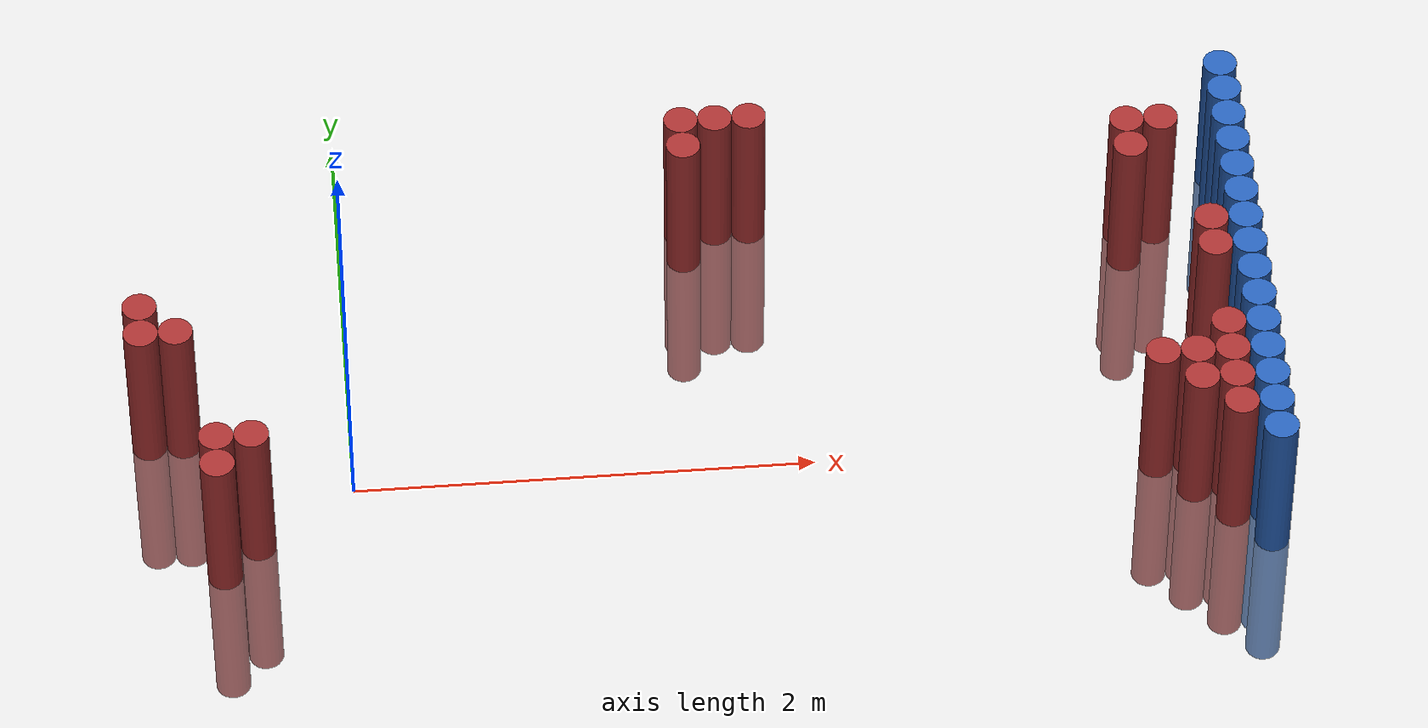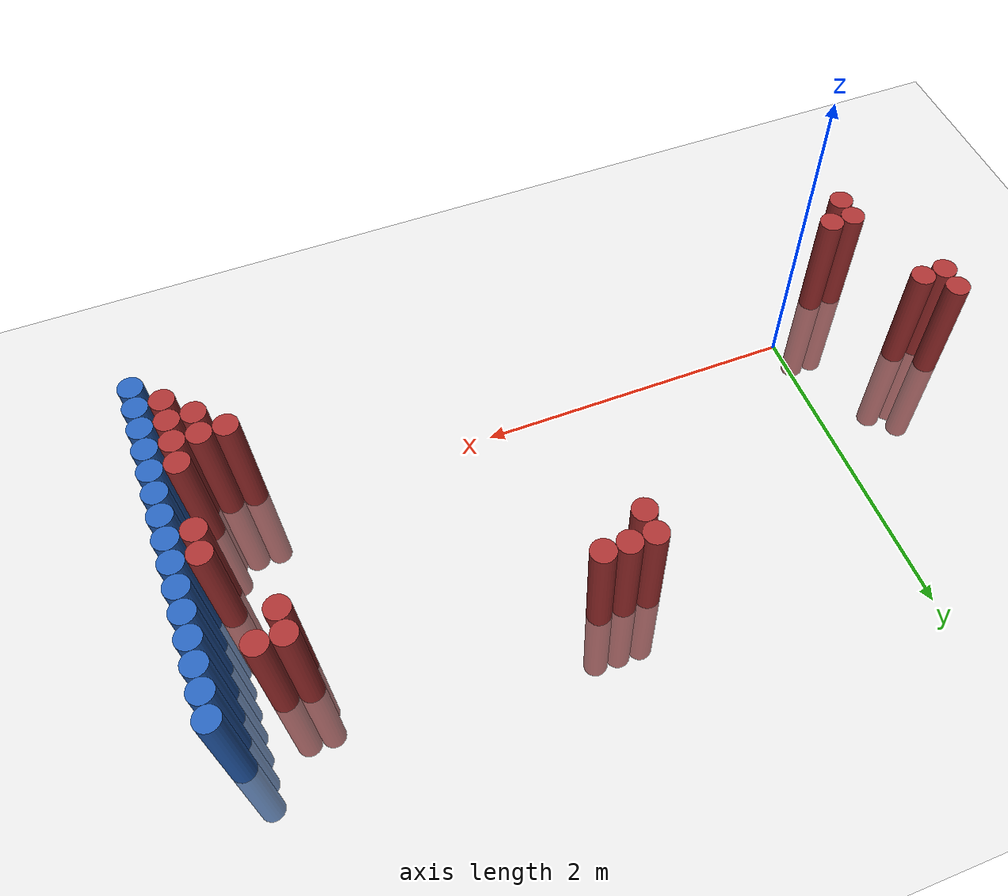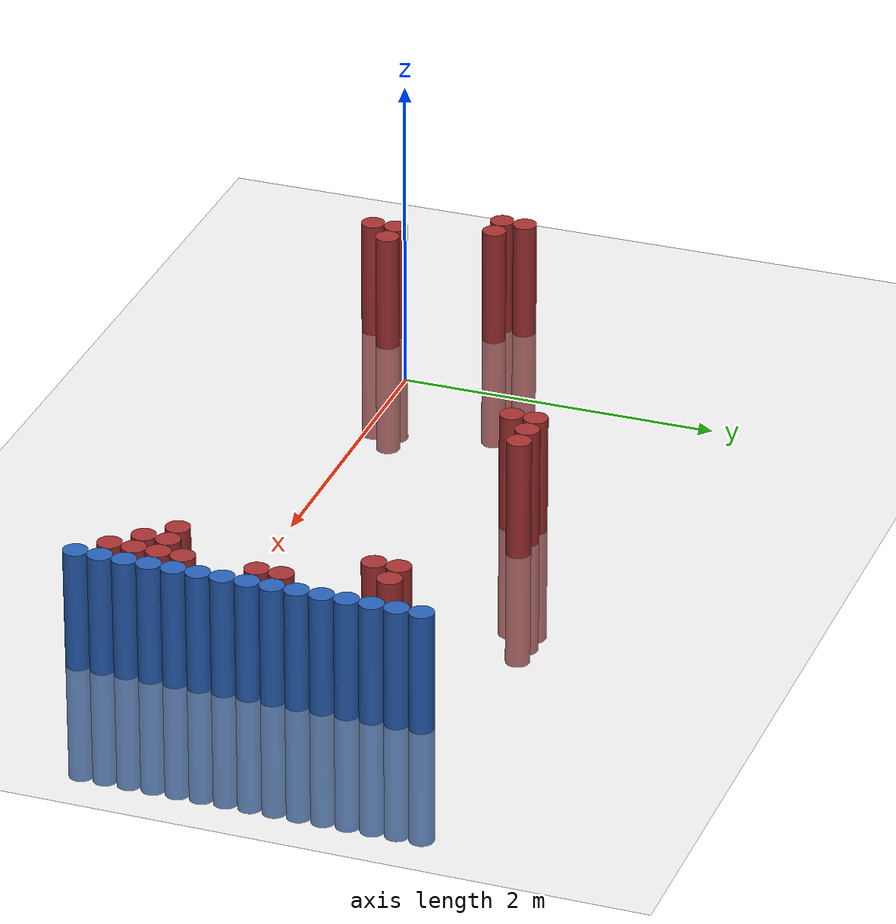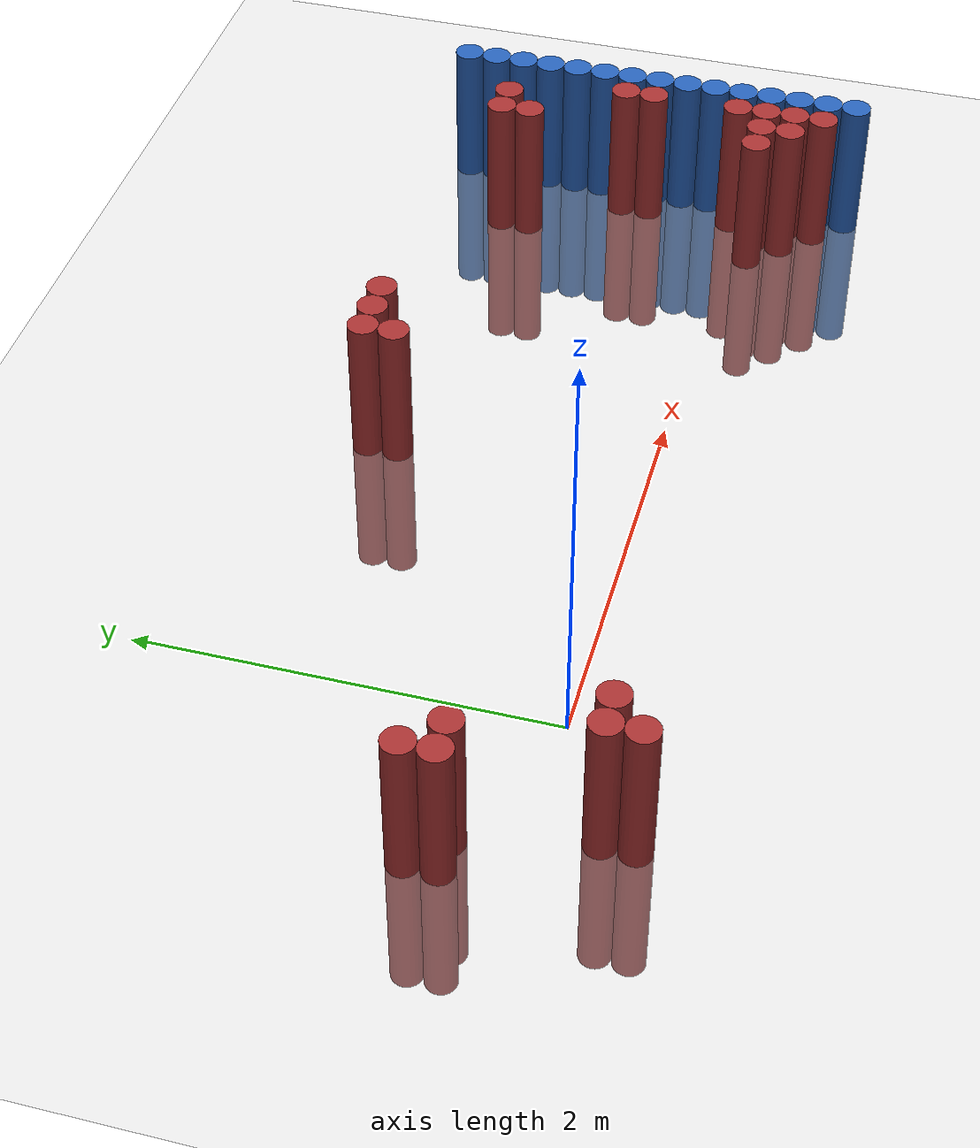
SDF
<sdf version="1.6">
 <world name="default">
  <model name="ground_plane">
   <static>1</static>
   <link name="link">
    <collision name="collision">
     <geometry><plane><normal>0 0 1</normal><size>100 100</size></plane></geometry>
     <surface><friction><ode><mu>100</mu><mu2>50</mu2></ode></friction></surface>
    </collision>
    <visual name="visual">
     <cast_shadows>0</cast_shadows>
     <geometry><plane><normal>0 0 1</normal><size>100 100</size></plane></geometry>
     <material>
      <script><uri>file://media/materials/scripts/gazebo.material</uri><name>Gazebo/Grey</name></script>
     </material>
    </visual>
   </link>
  </model>
  <model name="unit_cylinder_108">
   <static>1</static>
   <pose>3.925000 -0.425000 0.000000 0.000000 0.000000 0.000000</pose>
   <link name="link">
    <inertial>
     <mass>1</mass>
     <inertia><ixx>0.145833</ixx><ixy>0</ixy><ixz>0</ixz><iyy>0.145833</iyy><iyz>0</iyz><izz>0.125</izz></inertia>
    </inertial>
    <collision name="collision">
     <geometry><cylinder><radius>0.075000</radius><length>1.5</length></cylinder></geometry>
    </collision>
    <visual name="visual">
     <geometry><cylinder><radius>0.075000</radius><length>1.5</length></cylinder></geometry>
     <material>
      <ambient>0.152000 0.379000 0.720000 1</ambient>
      <diffuse>0.152000 0.379000 0.720000 1</diffuse>
     </material>
     <material>
      <script><name>Gazebo/Grey</name><uri>file://media/materials/scripts/gazebo.material</uri></script>
     </material>
    </visual>
   </link>
  </model>
  <model name="unit_cylinder_110">
   <static>1</static>
   <pose>3.925000 -0.275000 0.000000 0.000000 0.000000 0.000000</pose>
   <link name="link">
    <inertial>
     <mass>1</mass>
     <inertia><ixx>0.145833</ixx><ixy>0</ixy><ixz>0</ixz><iyy>0.145833</iyy><iyz>0</iyz><izz>0.125</izz></inertia>
    </inertial>
    <collision name="collision">
     <geometry><cylinder><radius>0.075000</radius><length>1.5</length></cylinder></geometry>
    </collision>
    <visual name="visual">
     <geometry><cylinder><radius>0.075000</radius><length>1.5</length></cylinder></geometry>
     <material>
      <ambient>0.152000 0.379000 0.720000 1</ambient>
      <diffuse>0.152000 0.379000 0.720000 1</diffuse>
     </material>
     <material>
      <script><name>Gazebo/Grey</name><uri>file://media/materials/scripts/gazebo.material</uri></script>
     </material>
    </visual>
   </link>
  </model>
  <model name="unit_cylinder_112">
   <static>1</static>
   <pose>3.925000 -0.125000 0.000000 0.000000 0.000000 0.000000</pose>
   <link name="link">
    <inertial>
     <mass>1</mass>
     <inertia><ixx>0.145833</ixx><ixy>0</ixy><ixz>0</ixz><iyy>0.145833</iyy><iyz>0</iyz><izz>0.125</izz></inertia>
    </inertial>
    <collision name="collision">
     <geometry><cylinder><radius>0.075000</radius><length>1.5</length></cylinder></geometry>
    </collision>
    <visual name="visual">
     <geometry><cylinder><radius>0.075000</radius><length>1.5</length></cylinder></geometry>
     <material>
      <ambient>0.152000 0.379000 0.720000 1</ambient>
      <diffuse>0.152000 0.379000 0.720000 1</diffuse>
     </material>
     <material>
      <script><name>Gazebo/Grey</name><uri>file://media/materials/scripts/gazebo.material</uri></script>
     </material>
    </visual>
   </link>
  </model>
  <model name="unit_cylinder_114">
   <static>1</static>
   <pose>3.925000 0.025000 0.000000 0.000000 0.000000 0.000000</pose>
   <link name="link">
    <inertial>
     <mass>1</mass>
     <inertia><ixx>0.145833</ixx><ixy>0</ixy><ixz>0</ixz><iyy>0.145833</iyy><iyz>0</iyz><izz>0.125</izz></inertia>
    </inertial>
    <collision name="collision">
     <geometry><cylinder><radius>0.075000</radius><length>1.5</length></cylinder></geometry>
    </collision>
    <visual name="visual">
     <geometry><cylinder><radius>0.075000</radius><length>1.5</length></cylinder></geometry>
     <material>
      <ambient>0.152000 0.379000 0.720000 1</ambient>
      <diffuse>0.152000 0.379000 0.720000 1</diffuse>
     </material>
     <material>
      <script><name>Gazebo/Grey</name><uri>file://media/materials/scripts/gazebo.material</uri></script>
     </material>
    </visual>
   </link>
  </model>
  <model name="unit_cylinder_116">
   <static>1</static>
   <pose>3.925000 0.175000 0.000000 0.000000 0.000000 0.000000</pose>
   <link name="link">
    <inertial>
     <mass>1</mass>
     <inertia><ixx>0.145833</ixx><ixy>0</ixy><ixz>0</ixz><iyy>0.145833</iyy><iyz>0</iyz><izz>0.125</izz></inertia>
    </inertial>
    <collision name="collision">
     <geometry><cylinder><radius>0.075000</radius><length>1.5</length></cylinder></geometry>
    </collision>
    <visual name="visual">
     <geometry><cylinder><radius>0.075000</radius><length>1.5</length></cylinder></geometry>
     <material>
      <ambient>0.152000 0.379000 0.720000 1</ambient>
      <diffuse>0.152000 0.379000 0.720000 1</diffuse>
     </material>
     <material>
      <script><name>Gazebo/Grey</name><uri>file://media/materials/scripts/gazebo.material</uri></script>
     </material>
    </visual>
   </link>
  </model>
  <model name="unit_cylinder_118">
   <static>1</static>
   <pose>3.925000 0.325000 0.000000 0.000000 0.000000 0.000000</pose>
   <link name="link">
    <inertial>
     <mass>1</mass>
     <inertia><ixx>0.145833</ixx><ixy>0</ixy><ixz>0</ixz><iyy>0.145833</iyy><iyz>0</iyz><izz>0.125</izz></inertia>
    </inertial>
    <collision name="collision">
     <geometry><cylinder><radius>0.075000</radius><length>1.5</length></cylinder></geometry>
    </collision>
    <visual name="visual">
     <geometry><cylinder><radius>0.075000</radius><length>1.5</length></cylinder></geometry>
     <material>
      <ambient>0.152000 0.379000 0.720000 1</ambient>
      <diffuse>0.152000 0.379000 0.720000 1</diffuse>
     </material>
     <material>
      <script><name>Gazebo/Grey</name><uri>file://media/materials/scripts/gazebo.material</uri></script>
     </material>
    </visual>
   </link>
  </model>
  <model name="unit_cylinder_120">
   <static>1</static>
   <pose>3.925000 0.475000 0.000000 0.000000 0.000000 0.000000</pose>
   <link name="link">
    <inertial>
     <mass>1</mass>
     <inertia><ixx>0.145833</ixx><ixy>0</ixy><ixz>0</ixz><iyy>0.145833</iyy><iyz>0</iyz><izz>0.125</izz></inertia>
    </inertial>
    <collision name="collision">
     <geometry><cylinder><radius>0.075000</radius><length>1.5</length></cylinder></geometry>
    </collision>
    <visual name="visual">
     <geometry><cylinder><radius>0.075000</radius><length>1.5</length></cylinder></geometry>
     <material>
      <ambient>0.152000 0.379000 0.720000 1</ambient>
      <diffuse>0.152000 0.379000 0.720000 1</diffuse>
     </material>
     <material>
      <script><name>Gazebo/Grey</name><uri>file://media/materials/scripts/gazebo.material</uri></script>
     </material>
    </visual>
   </link>
  </model>
  <model name="unit_cylinder_122">
   <static>1</static>
   <pose>3.925000 0.625000 0.000000 0.000000 0.000000 0.000000</pose>
   <link name="link">
    <inertial>
     <mass>1</mass>
     <inertia><ixx>0.145833</ixx><ixy>0</ixy><ixz>0</ixz><iyy>0.145833</iyy><iyz>0</iyz><izz>0.125</izz></inertia>
    </inertial>
    <collision name="collision">
     <geometry><cylinder><radius>0.075000</radius><length>1.5</length></cylinder></geometry>
    </collision>
    <visual name="visual">
     <geometry><cylinder><radius>0.075000</radius><length>1.5</length></cylinder></geometry>
     <material>
      <ambient>0.152000 0.379000 0.720000 1</ambient>
      <diffuse>0.152000 0.379000 0.720000 1</diffuse>
     </material>
     <material>
      <script><name>Gazebo/Grey</name><uri>file://media/materials/scripts/gazebo.material</uri></script>
     </material>
    </visual>
   </link>
  </model>
  <model name="unit_cylinder_124">
   <static>1</static>
   <pose>3.925000 0.775000 0.000000 0.000000 0.000000 0.000000</pose>
   <link name="link">
    <inertial>
     <mass>1</mass>
     <inertia><ixx>0.145833</ixx><ixy>0</ixy><ixz>0</ixz><iyy>0.145833</iyy><iyz>0</iyz><izz>0.125</izz></inertia>
    </inertial>
    <collision name="collision">
     <geometry><cylinder><radius>0.075000</radius><length>1.5</length></cylinder></geometry>
    </collision>
    <visual name="visual">
     <geometry><cylinder><radius>0.075000</radius><length>1.5</length></cylinder></geometry>
     <material>
      <ambient>0.152000 0.379000 0.720000 1</ambient>
      <diffuse>0.152000 0.379000 0.720000 1</diffuse>
     </material>
     <material>
      <script><name>Gazebo/Grey</name><uri>file://media/materials/scripts/gazebo.material</uri></script>
     </material>
    </visual>
   </link>
  </model>
  <model name="unit_cylinder_126">
   <static>1</static>
   <pose>3.925000 0.925000 0.000000 0.000000 0.000000 0.000000</pose>
   <link name="link">
    <inertial>
     <mass>1</mass>
     <inertia><ixx>0.145833</ixx><ixy>0</ixy><ixz>0</ixz><iyy>0.145833</iyy><iyz>0</iyz><izz>0.125</izz></inertia>
    </inertial>
    <collision name="collision">
     <geometry><cylinder><radius>0.075000</radius><length>1.5</length></cylinder></geometry>
    </collision>
    <visual name="visual">
     <geometry><cylinder><radius>0.075000</radius><length>1.5</length></cylinder></geometry>
     <material>
      <ambient>0.152000 0.379000 0.720000 1</ambient>
      <diffuse>0.152000 0.379000 0.720000 1</diffuse>
     </material>
     <material>
      <script><name>Gazebo/Grey</name><uri>file://media/materials/scripts/gazebo.material</uri></script>
     </material>
    </visual>
   </link>
  </model>
  <model name="unit_cylinder_128">
   <static>1</static>
   <pose>3.925000 1.075000 0.000000 0.000000 0.000000 0.000000</pose>
   <link name="link">
    <inertial>
     <mass>1</mass>
     <inertia><ixx>0.145833</ixx><ixy>0</ixy><ixz>0</ixz><iyy>0.145833</iyy><iyz>0</iyz><izz>0.125</izz></inertia>
    </inertial>
    <collision name="collision">
     <geometry><cylinder><radius>0.075000</radius><length>1.5</length></cylinder></geometry>
    </collision>
    <visual name="visual">
     <geometry><cylinder><radius>0.075000</radius><length>1.5</length></cylinder></geometry>
     <material>
      <ambient>0.152000 0.379000 0.720000 1</ambient>
      <diffuse>0.152000 0.379000 0.720000 1</diffuse>
     </material>
     <material>
      <script><name>Gazebo/Grey</name><uri>file://media/materials/scripts/gazebo.material</uri></script>
     </material>
    </visual>
   </link>
  </model>
  <model name="unit_cylinder_130">
   <static>1</static>
   <pose>3.925000 1.225000 0.000000 0.000000 0.000000 0.000000</pose>
   <link name="link">
    <inertial>
     <mass>1</mass>
     <inertia><ixx>0.145833</ixx><ixy>0</ixy><ixz>0</ixz><iyy>0.145833</iyy><iyz>0</iyz><izz>0.125</izz></inertia>
    </inertial>
    <collision name="collision">
     <geometry><cylinder><radius>0.075000</radius><length>1.5</length></cylinder></geometry>
    </collision>
    <visual name="visual">
     <geometry><cylinder><radius>0.075000</radius><length>1.5</length></cylinder></geometry>
     <material>
      <ambient>0.152000 0.379000 0.720000 1</ambient>
      <diffuse>0.152000 0.379000 0.720000 1</diffuse>
     </material>
     <material>
      <script><name>Gazebo/Grey</name><uri>file://media/materials/scripts/gazebo.material</uri></script>
     </material>
    </visual>
   </link>
  </model>
  <model name="unit_cylinder_132">
   <static>1</static>
   <pose>3.925000 1.375000 0.000000 0.000000 0.000000 0.000000</pose>
   <link name="link">
    <inertial>
     <mass>1</mass>
     <inertia><ixx>0.145833</ixx><ixy>0</ixy><ixz>0</ixz><iyy>0.145833</iyy><iyz>0</iyz><izz>0.125</izz></inertia>
    </inertial>
    <collision name="collision">
     <geometry><cylinder><radius>0.075000</radius><length>1.5</length></cylinder></geometry>
    </collision>
    <visual name="visual">
     <geometry><cylinder><radius>0.075000</radius><length>1.5</length></cylinder></geometry>
     <material>
      <ambient>0.152000 0.379000 0.720000 1</ambient>
      <diffuse>0.152000 0.379000 0.720000 1</diffuse>
     </material>
     <material>
      <script><name>Gazebo/Grey</name><uri>file://media/materials/scripts/gazebo.material</uri></script>
     </material>
    </visual>
   </link>
  </model>
  <model name="unit_cylinder_134">
   <static>1</static>
   <pose>3.925000 1.525000 0.000000 0.000000 0.000000 0.000000</pose>
   <link name="link">
    <inertial>
     <mass>1</mass>
     <inertia><ixx>0.145833</ixx><ixy>0</ixy><ixz>0</ixz><iyy>0.145833</iyy><iyz>0</iyz><izz>0.125</izz></inertia>
    </inertial>
    <collision name="collision">
     <geometry><cylinder><radius>0.075000</radius><length>1.5</length></cylinder></geometry>
    </collision>
    <visual name="visual">
     <geometry><cylinder><radius>0.075000</radius><length>1.5</length></cylinder></geometry>
     <material>
      <ambient>0.152000 0.379000 0.720000 1</ambient>
      <diffuse>0.152000 0.379000 0.720000 1</diffuse>
     </material>
     <material>
      <script><name>Gazebo/Grey</name><uri>file://media/materials/scripts/gazebo.material</uri></script>
     </material>
    </visual>
   </link>
  </model>
  <model name="unit_cylinder_327">
   <static>1</static>
   <pose>-0.875000 0.325000 0.000000 0.000000 0.000000 0.000000</pose>
   <link name="link">
    <inertial>
     <mass>1</mass>
     <inertia><ixx>0.145833</ixx><ixy>0</ixy><ixz>0</ixz><iyy>0.145833</iyy><iyz>0</iyz><izz>0.125</izz></inertia>
    </inertial>
    <collision name="collision">
     <geometry><cylinder><radius>0.075000</radius><length>1.5</length></cylinder></geometry>
    </collision>
    <visual name="visual">
     <geometry><cylinder><radius>0.075000</radius><length>1.5</length></cylinder></geometry>
     <material>
      <ambient>0.648000 0.192000 0.192000 1</ambient>
      <diffuse>0.648000 0.192000 0.192000 1</diffuse>
     </material>
     <material>
      <script><name>Gazebo/Grey</name><uri>file://media/materials/scripts/gazebo.material</uri></script>
     </material>
    </visual>
   </link>
  </model>
  <model name="unit_cylinder_328">
   <static>1</static>
   <pose>-0.875000 0.475000 0.000000 0.000000 0.000000 0.000000</pose>
   <link name="link">
    <inertial>
     <mass>1</mass>
     <inertia><ixx>0.145833</ixx><ixy>0</ixy><ixz>0</ixz><iyy>0.145833</iyy><iyz>0</iyz><izz>0.125</izz></inertia>
    </inertial>
    <collision name="collision">
     <geometry><cylinder><radius>0.075000</radius><length>1.5</length></cylinder></geometry>
    </collision>
    <visual name="visual">
     <geometry><cylinder><radius>0.075000</radius><length>1.5</length></cylinder></geometry>
     <material>
      <ambient>0.648000 0.192000 0.192000 1</ambient>
      <diffuse>0.648000 0.192000 0.192000 1</diffuse>
     </material>
     <material>
      <script><name>Gazebo/Grey</name><uri>file://media/materials/scripts/gazebo.material</uri></script>
     </material>
    </visual>
   </link>
  </model>
  <model name="unit_cylinder_331">
   <static>1</static>
   <pose>-0.725000 0.325000 0.000000 0.000000 0.000000 0.000000</pose>
   <link name="link">
    <inertial>
     <mass>1</mass>
     <inertia><ixx>0.145833</ixx><ixy>0</ixy><ixz>0</ixz><iyy>0.145833</iyy><iyz>0</iyz><izz>0.125</izz></inertia>
    </inertial>
    <collision name="collision">
     <geometry><cylinder><radius>0.075000</radius><length>1.5</length></cylinder></geometry>
    </collision>
    <visual name="visual">
     <geometry><cylinder><radius>0.075000</radius><length>1.5</length></cylinder></geometry>
     <material>
      <ambient>0.648000 0.192000 0.192000 1</ambient>
      <diffuse>0.648000 0.192000 0.192000 1</diffuse>
     </material>
     <material>
      <script><name>Gazebo/Grey</name><uri>file://media/materials/scripts/gazebo.material</uri></script>
     </material>
    </visual>
   </link>
  </model>
  <model name="unit_cylinder_334">
   <static>1</static>
   <pose>-0.575000 -0.425000 0.000000 0.000000 0.000000 0.000000</pose>
   <link name="link">
    <inertial>
     <mass>1</mass>
     <inertia><ixx>0.145833</ixx><ixy>0</ixy><ixz>0</ixz><iyy>0.145833</iyy><iyz>0</iyz><izz>0.125</izz></inertia>
    </inertial>
    <collision name="collision">
     <geometry><cylinder><radius>0.075000</radius><length>1.5</length></cylinder></geometry>
    </collision>
    <visual name="visual">
     <geometry><cylinder><radius>0.075000</radius><length>1.5</length></cylinder></geometry>
     <material>
      <ambient>0.648000 0.192000 0.192000 1</ambient>
      <diffuse>0.648000 0.192000 0.192000 1</diffuse>
     </material>
     <material>
      <script><name>Gazebo/Grey</name><uri>file://media/materials/scripts/gazebo.material</uri></script>
     </material>
    </visual>
   </link>
  </model>
  <model name="unit_cylinder_335">
   <static>1</static>
   <pose>-0.575000 -0.275000 0.000000 0.000000 0.000000 0.000000</pose>
   <link name="link">
    <inertial>
     <mass>1</mass>
     <inertia><ixx>0.145833</ixx><ixy>0</ixy><ixz>0</ixz><iyy>0.145833</iyy><iyz>0</iyz><izz>0.125</izz></inertia>
    </inertial>
    <collision name="collision">
     <geometry><cylinder><radius>0.075000</radius><length>1.5</length></cylinder></geometry>
    </collision>
    <visual name="visual">
     <geometry><cylinder><radius>0.075000</radius><length>1.5</length></cylinder></geometry>
     <material>
      <ambient>0.648000 0.192000 0.192000 1</ambient>
      <diffuse>0.648000 0.192000 0.192000 1</diffuse>
     </material>
     <material>
      <script><name>Gazebo/Grey</name><uri>file://media/materials/scripts/gazebo.material</uri></script>
     </material>
    </visual>
   </link>
  </model>
  <model name="unit_cylinder_338">
   <static>1</static>
   <pose>-0.425000 -0.275000 0.000000 0.000000 0.000000 0.000000</pose>
   <link name="link">
    <inertial>
     <mass>1</mass>
     <inertia><ixx>0.145833</ixx><ixy>0</ixy><ixz>0</ixz><iyy>0.145833</iyy><iyz>0</iyz><izz>0.125</izz></inertia>
    </inertial>
    <collision name="collision">
     <geometry><cylinder><radius>0.075000</radius><length>1.5</length></cylinder></geometry>
    </collision>
    <visual name="visual">
     <geometry><cylinder><radius>0.075000</radius><length>1.5</length></cylinder></geometry>
     <material>
      <ambient>0.648000 0.192000 0.192000 1</ambient>
      <diffuse>0.648000 0.192000 0.192000 1</diffuse>
     </material>
     <material>
      <script><name>Gazebo/Grey</name><uri>file://media/materials/scripts/gazebo.material</uri></script>
     </material>
    </visual>
   </link>
  </model>
  <model name="unit_cylinder_375">
   <static>1</static>
   <pose>1.525000 1.225000 0.000000 0.000000 0.000000 0.000000</pose>
   <link name="link">
    <inertial>
     <mass>1</mass>
     <inertia><ixx>0.145833</ixx><ixy>0</ixy><ixz>0</ixz><iyy>0.145833</iyy><iyz>0</iyz><izz>0.125</izz></inertia>
    </inertial>
    <collision name="collision">
     <geometry><cylinder><radius>0.075000</radius><length>1.5</length></cylinder></geometry>
    </collision>
    <visual name="visual">
     <geometry><cylinder><radius>0.075000</radius><length>1.5</length></cylinder></geometry>
     <material>
      <ambient>0.648000 0.192000 0.192000 1</ambient>
      <diffuse>0.648000 0.192000 0.192000 1</diffuse>
     </material>
     <material>
      <script><name>Gazebo/Grey</name><uri>file://media/materials/scripts/gazebo.material</uri></script>
     </material>
    </visual>
   </link>
  </model>
  <model name="unit_cylinder_376">
   <static>1</static>
   <pose>1.525000 1.375000 0.000000 0.000000 0.000000 0.000000</pose>
   <link name="link">
    <inertial>
     <mass>1</mass>
     <inertia><ixx>0.145833</ixx><ixy>0</ixy><ixz>0</ixz><iyy>0.145833</iyy><iyz>0</iyz><izz>0.125</izz></inertia>
    </inertial>
    <collision name="collision">
     <geometry><cylinder><radius>0.075000</radius><length>1.5</length></cylinder></geometry>
    </collision>
    <visual name="visual">
     <geometry><cylinder><radius>0.075000</radius><length>1.5</length></cylinder></geometry>
     <material>
      <ambient>0.648000 0.192000 0.192000 1</ambient>
      <diffuse>0.648000 0.192000 0.192000 1</diffuse>
     </material>
     <material>
      <script><name>Gazebo/Grey</name><uri>file://media/materials/scripts/gazebo.material</uri></script>
     </material>
    </visual>
   </link>
  </model>
  <model name="unit_cylinder_380">
   <static>1</static>
   <pose>1.675000 1.375000 0.000000 0.000000 0.000000 0.000000</pose>
   <link name="link">
    <inertial>
     <mass>1</mass>
     <inertia><ixx>0.145833</ixx><ixy>0</ixy><ixz>0</ixz><iyy>0.145833</iyy><iyz>0</iyz><izz>0.125</izz></inertia>
    </inertial>
    <collision name="collision">
     <geometry><cylinder><radius>0.075000</radius><length>1.5</length></cylinder></geometry>
    </collision>
    <visual name="visual">
     <geometry><cylinder><radius>0.075000</radius><length>1.5</length></cylinder></geometry>
     <material>
      <ambient>0.648000 0.192000 0.192000 1</ambient>
      <diffuse>0.648000 0.192000 0.192000 1</diffuse>
     </material>
     <material>
      <script><name>Gazebo/Grey</name><uri>file://media/materials/scripts/gazebo.material</uri></script>
     </material>
    </visual>
   </link>
  </model>
  <model name="unit_cylinder_384">
   <static>1</static>
   <pose>1.825000 1.375000 0.000000 0.000000 0.000000 0.000000</pose>
   <link name="link">
    <inertial>
     <mass>1</mass>
     <inertia><ixx>0.145833</ixx><ixy>0</ixy><ixz>0</ixz><iyy>0.145833</iyy><iyz>0</iyz><izz>0.125</izz></inertia>
    </inertial>
    <collision name="collision">
     <geometry><cylinder><radius>0.075000</radius><length>1.5</length></cylinder></geometry>
    </collision>
    <visual name="visual">
     <geometry><cylinder><radius>0.075000</radius><length>1.5</length></cylinder></geometry>
     <material>
      <ambient>0.648000 0.192000 0.192000 1</ambient>
      <diffuse>0.648000 0.192000 0.192000 1</diffuse>
     </material>
     <material>
      <script><name>Gazebo/Grey</name><uri>file://media/materials/scripts/gazebo.material</uri></script>
     </material>
    </visual>
   </link>
  </model>
  <model name="unit_cylinder_410">
   <static>1</static>
   <pose>3.475000 -0.125000 0.000000 0.000000 0.000000 0.000000</pose>
   <link name="link">
    <inertial>
     <mass>1</mass>
     <inertia><ixx>0.145833</ixx><ixy>0</ixy><ixz>0</ixz><iyy>0.145833</iyy><iyz>0</iyz><izz>0.125</izz></inertia>
    </inertial>
    <collision name="collision">
     <geometry><cylinder><radius>0.075000</radius><length>1.5</length></cylinder></geometry>
    </collision>
    <visual name="visual">
     <geometry><cylinder><radius>0.075000</radius><length>1.5</length></cylinder></geometry>
     <material>
      <ambient>0.648000 0.192000 0.192000 1</ambient>
      <diffuse>0.648000 0.192000 0.192000 1</diffuse>
     </material>
     <material>
      <script><name>Gazebo/Grey</name><uri>file://media/materials/scripts/gazebo.material</uri></script>
     </material>
    </visual>
   </link>
  </model>
  <model name="unit_cylinder_411">
   <static>1</static>
   <pose>3.475000 1.075000 0.000000 0.000000 0.000000 0.000000</pose>
   <link name="link">
    <inertial>
     <mass>1</mass>
     <inertia><ixx>0.145833</ixx><ixy>0</ixy><ixz>0</ixz><iyy>0.145833</iyy><iyz>0</iyz><izz>0.125</izz></inertia>
    </inertial>
    <collision name="collision">
     <geometry><cylinder><radius>0.075000</radius><length>1.5</length></cylinder></geometry>
    </collision>
    <visual name="visual">
     <geometry><cylinder><radius>0.075000</radius><length>1.5</length></cylinder></geometry>
     <material>
      <ambient>0.648000 0.192000 0.192000 1</ambient>
      <diffuse>0.648000 0.192000 0.192000 1</diffuse>
     </material>
     <material>
      <script><name>Gazebo/Grey</name><uri>file://media/materials/scripts/gazebo.material</uri></script>
     </material>
    </visual>
   </link>
  </model>
  <model name="unit_cylinder_412">
   <static>1</static>
   <pose>3.475000 1.225000 0.000000 0.000000 0.000000 0.000000</pose>
   <link name="link">
    <inertial>
     <mass>1</mass>
     <inertia><ixx>0.145833</ixx><ixy>0</ixy><ixz>0</ixz><iyy>0.145833</iyy><iyz>0</iyz><izz>0.125</izz></inertia>
    </inertial>
    <collision name="collision">
     <geometry><cylinder><radius>0.075000</radius><length>1.5</length></cylinder></geometry>
    </collision>
    <visual name="visual">
     <geometry><cylinder><radius>0.075000</radius><length>1.5</length></cylinder></geometry>
     <material>
      <ambient>0.648000 0.192000 0.192000 1</ambient>
      <diffuse>0.648000 0.192000 0.192000 1</diffuse>
     </material>
     <material>
      <script><name>Gazebo/Grey</name><uri>file://media/materials/scripts/gazebo.material</uri></script>
     </material>
    </visual>
   </link>
  </model>
  <model name="unit_cylinder_418">
   <static>1</static>
   <pose>3.625000 -0.275000 0.000000 0.000000 0.000000 0.000000</pose>
   <link name="link">
    <inertial>
     <mass>1</mass>
     <inertia><ixx>0.145833</ixx><ixy>0</ixy><ixz>0</ixz><iyy>0.145833</iyy><iyz>0</iyz><izz>0.125</izz></inertia>
    </inertial>
    <collision name="collision">
     <geometry><cylinder><radius>0.075000</radius><length>1.5</length></cylinder></geometry>
    </collision>
    <visual name="visual">
     <geometry><cylinder><radius>0.075000</radius><length>1.5</length></cylinder></geometry>
     <material>
      <ambient>0.648000 0.192000 0.192000 1</ambient>
      <diffuse>0.648000 0.192000 0.192000 1</diffuse>
     </material>
     <material>
      <script><name>Gazebo/Grey</name><uri>file://media/materials/scripts/gazebo.material</uri></script>
     </material>
    </visual>
   </link>
  </model>
  <model name="unit_cylinder_419">
   <static>1</static>
   <pose>3.625000 -0.125000 0.000000 0.000000 0.000000 0.000000</pose>
   <link name="link">
    <inertial>
     <mass>1</mass>
     <inertia><ixx>0.145833</ixx><ixy>0</ixy><ixz>0</ixz><iyy>0.145833</iyy><iyz>0</iyz><izz>0.125</izz></inertia>
    </inertial>
    <collision name="collision">
     <geometry><cylinder><radius>0.075000</radius><length>1.5</length></cylinder></geometry>
    </collision>
    <visual name="visual">
     <geometry><cylinder><radius>0.075000</radius><length>1.5</length></cylinder></geometry>
     <material>
      <ambient>0.648000 0.192000 0.192000 1</ambient>
      <diffuse>0.648000 0.192000 0.192000 1</diffuse>
     </material>
     <material>
      <script><name>Gazebo/Grey</name><uri>file://media/materials/scripts/gazebo.material</uri></script>
     </material>
    </visual>
   </link>
  </model>
  <model name="unit_cylinder_420">
   <static>1</static>
   <pose>3.625000 1.225000 0.000000 0.000000 0.000000 0.000000</pose>
   <link name="link">
    <inertial>
     <mass>1</mass>
     <inertia><ixx>0.145833</ixx><ixy>0</ixy><ixz>0</ixz><iyy>0.145833</iyy><iyz>0</iyz><izz>0.125</izz></inertia>
    </inertial>
    <collision name="collision">
     <geometry><cylinder><radius>0.075000</radius><length>1.5</length></cylinder></geometry>
    </collision>
    <visual name="visual">
     <geometry><cylinder><radius>0.075000</radius><length>1.5</length></cylinder></geometry>
     <material>
      <ambient>0.648000 0.192000 0.192000 1</ambient>
      <diffuse>0.648000 0.192000 0.192000 1</diffuse>
     </material>
     <material>
      <script><name>Gazebo/Grey</name><uri>file://media/materials/scripts/gazebo.material</uri></script>
     </material>
    </visual>
   </link>
  </model>
  <model name="unit_cylinder_427">
   <static>1</static>
   <pose>3.775000 -0.425000 0.000000 0.000000 0.000000 0.000000</pose>
   <link name="link">
    <inertial>
     <mass>1</mass>
     <inertia><ixx>0.145833</ixx><ixy>0</ixy><ixz>0</ixz><iyy>0.145833</iyy><iyz>0</iyz><izz>0.125</izz></inertia>
    </inertial>
    <collision name="collision">
     <geometry><cylinder><radius>0.075000</radius><length>1.5</length></cylinder></geometry>
    </collision>
    <visual name="visual">
     <geometry><cylinder><radius>0.075000</radius><length>1.5</length></cylinder></geometry>
     <material>
      <ambient>0.648000 0.192000 0.192000 1</ambient>
      <diffuse>0.648000 0.192000 0.192000 1</diffuse>
     </material>
     <material>
      <script><name>Gazebo/Grey</name><uri>file://media/materials/scripts/gazebo.material</uri></script>
     </material>
    </visual>
   </link>
  </model>
  <model name="unit_cylinder_428">
   <static>1</static>
   <pose>3.775000 -0.275000 0.000000 0.000000 0.000000 0.000000</pose>
   <link name="link">
    <inertial>
     <mass>1</mass>
     <inertia><ixx>0.145833</ixx><ixy>0</ixy><ixz>0</ixz><iyy>0.145833</iyy><iyz>0</iyz><izz>0.125</izz></inertia>
    </inertial>
    <collision name="collision">
     <geometry><cylinder><radius>0.075000</radius><length>1.5</length></cylinder></geometry>
    </collision>
    <visual name="visual">
     <geometry><cylinder><radius>0.075000</radius><length>1.5</length></cylinder></geometry>
     <material>
      <ambient>0.648000 0.192000 0.192000 1</ambient>
      <diffuse>0.648000 0.192000 0.192000 1</diffuse>
     </material>
     <material>
      <script><name>Gazebo/Grey</name><uri>file://media/materials/scripts/gazebo.material</uri></script>
     </material>
    </visual>
   </link>
  </model>
  <model name="unit_cylinder_429">
   <static>1</static>
   <pose>3.775000 -0.125000 0.000000 0.000000 0.000000 0.000000</pose>
   <link name="link">
    <inertial>
     <mass>1</mass>
     <inertia><ixx>0.145833</ixx><ixy>0</ixy><ixz>0</ixz><iyy>0.145833</iyy><iyz>0</iyz><izz>0.125</izz></inertia>
    </inertial>
    <collision name="collision">
     <geometry><cylinder><radius>0.075000</radius><length>1.5</length></cylinder></geometry>
    </collision>
    <visual name="visual">
     <geometry><cylinder><radius>0.075000</radius><length>1.5</length></cylinder></geometry>
     <material>
      <ambient>0.648000 0.192000 0.192000 1</ambient>
      <diffuse>0.648000 0.192000 0.192000 1</diffuse>
     </material>
     <material>
      <script><name>Gazebo/Grey</name><uri>file://media/materials/scripts/gazebo.material</uri></script>
     </material>
    </visual>
   </link>
  </model>
  <model name="unit_cylinder_430">
   <static>1</static>
   <pose>3.775000 0.025000 0.000000 0.000000 0.000000 0.000000</pose>
   <link name="link">
    <inertial>
     <mass>1</mass>
     <inertia><ixx>0.145833</ixx><ixy>0</ixy><ixz>0</ixz><iyy>0.145833</iyy><iyz>0</iyz><izz>0.125</izz></inertia>
    </inertial>
    <collision name="collision">
     <geometry><cylinder><radius>0.075000</radius><length>1.5</length></cylinder></geometry>
    </collision>
    <visual name="visual">
     <geometry><cylinder><radius>0.075000</radius><length>1.5</length></cylinder></geometry>
     <material>
      <ambient>0.648000 0.192000 0.192000 1</ambient>
      <diffuse>0.648000 0.192000 0.192000 1</diffuse>
     </material>
     <material>
      <script><name>Gazebo/Grey</name><uri>file://media/materials/scripts/gazebo.material</uri></script>
     </material>
    </visual>
   </link>
  </model>
  <model name="unit_cylinder_431">
   <static>1</static>
   <pose>3.775000 0.475000 0.000000 0.000000 0.000000 0.000000</pose>
   <link name="link">
    <inertial>
     <mass>1</mass>
     <inertia><ixx>0.145833</ixx><ixy>0</ixy><ixz>0</ixz><iyy>0.145833</iyy><iyz>0</iyz><izz>0.125</izz></inertia>
    </inertial>
    <collision name="collision">
     <geometry><cylinder><radius>0.075000</radius><length>1.5</length></cylinder></geometry>
    </collision>
    <visual name="visual">
     <geometry><cylinder><radius>0.075000</radius><length>1.5</length></cylinder></geometry>
     <material>
      <ambient>0.648000 0.192000 0.192000 1</ambient>
      <diffuse>0.648000 0.192000 0.192000 1</diffuse>
     </material>
     <material>
      <script><name>Gazebo/Grey</name><uri>file://media/materials/scripts/gazebo.material</uri></script>
     </material>
    </visual>
   </link>
  </model>
  <model name="unit_cylinder_432">
   <static>1</static>
   <pose>3.775000 0.625000 0.000000 0.000000 0.000000 0.000000</pose>
   <link name="link">
    <inertial>
     <mass>1</mass>
     <inertia><ixx>0.145833</ixx><ixy>0</ixy><ixz>0</ixz><iyy>0.145833</iyy><iyz>0</iyz><izz>0.125</izz></inertia>
    </inertial>
    <collision name="collision">
     <geometry><cylinder><radius>0.075000</radius><length>1.5</length></cylinder></geometry>
    </collision>
    <visual name="visual">
     <geometry><cylinder><radius>0.075000</radius><length>1.5</length></cylinder></geometry>
     <material>
      <ambient>0.648000 0.192000 0.192000 1</ambient>
      <diffuse>0.648000 0.192000 0.192000 1</diffuse>
     </material>
     <material>
      <script><name>Gazebo/Grey</name><uri>file://media/materials/scripts/gazebo.material</uri></script>
     </material>
    </visual>
   </link>
  </model>
  <model name="unit_cylinder_453">
   <static>1</static>
   <pose>3.925000 -0.575000 0.000000 0.000000 0.000000 0.000000</pose>
   <link name="link">
    <inertial>
     <mass>1</mass>
     <inertia><ixx>0.145833</ixx><ixy>0</ixy><ixz>0</ixz><iyy>0.145833</iyy><iyz>0</iyz><izz>0.125</izz></inertia>
    </inertial>
    <collision name="collision">
     <geometry><cylinder><radius>0.075000</radius><length>1.5</length></cylinder></geometry>
    </collision>
    <visual name="visual">
     <geometry><cylinder><radius>0.075000</radius><length>1.5</length></cylinder></geometry>
     <material>
      <ambient>0.152000 0.379000 0.720000 1</ambient>
      <diffuse>0.152000 0.379000 0.720000 1</diffuse>
     </material>
     <material>
      <script><name>Gazebo/Grey</name><uri>file://media/materials/scripts/gazebo.material</uri></script>
     </material>
    </visual>
   </link>
  </model>
  <model name="unit_cylinder_454">
   <static>1</static>
   <pose>3.925000 -0.425000 0.000000 0.000000 0.000000 0.000000</pose>
   <link name="link">
    <inertial>
     <mass>1</mass>
     <inertia><ixx>0.145833</ixx><ixy>0</ixy><ixz>0</ixz><iyy>0.145833</iyy><iyz>0</iyz><izz>0.125</izz></inertia>
    </inertial>
    <collision name="collision">
     <geometry><cylinder><radius>0.075000</radius><length>1.5</length></cylinder></geometry>
    </collision>
    <visual name="visual">
     <geometry><cylinder><radius>0.075000</radius><length>1.5</length></cylinder></geometry>
     <material>
      <ambient>0.152000 0.379000 0.720000 1</ambient>
      <diffuse>0.152000 0.379000 0.720000 1</diffuse>
     </material>
     <material>
      <script><name>Gazebo/Grey</name><uri>file://media/materials/scripts/gazebo.material</uri></script>
     </material>
    </visual>
   </link>
  </model>
  <model name="unit_cylinder_455">
   <static>1</static>
   <pose>3.925000 -0.275000 0.000000 0.000000 0.000000 0.000000</pose>
   <link name="link">
    <inertial>
     <mass>1</mass>
     <inertia><ixx>0.145833</ixx><ixy>0</ixy><ixz>0</ixz><iyy>0.145833</iyy><iyz>0</iyz><izz>0.125</izz></inertia>
    </inertial>
    <collision name="collision">
     <geometry><cylinder><radius>0.075000</radius><length>1.5</length></cylinder></geometry>
    </collision>
    <visual name="visual">
     <geometry><cylinder><radius>0.075000</radius><length>1.5</length></cylinder></geometry>
     <material>
      <ambient>0.152000 0.379000 0.720000 1</ambient>
      <diffuse>0.152000 0.379000 0.720000 1</diffuse>
     </material>
     <material>
      <script><name>Gazebo/Grey</name><uri>file://media/materials/scripts/gazebo.material</uri></script>
     </material>
    </visual>
   </link>
  </model>
  <model name="unit_cylinder_456">
   <static>1</static>
   <pose>3.925000 -0.125000 0.000000 0.000000 0.000000 0.000000</pose>
   <link name="link">
    <inertial>
     <mass>1</mass>
     <inertia><ixx>0.145833</ixx><ixy>0</ixy><ixz>0</ixz><iyy>0.145833</iyy><iyz>0</iyz><izz>0.125</izz></inertia>
    </inertial>
    <collision name="collision">
     <geometry><cylinder><radius>0.075000</radius><length>1.5</length></cylinder></geometry>
    </collision>
    <visual name="visual">
     <geometry><cylinder><radius>0.075000</radius><length>1.5</length></cylinder></geometry>
     <material>
      <ambient>0.152000 0.379000 0.720000 1</ambient>
      <diffuse>0.152000 0.379000 0.720000 1</diffuse>
     </material>
     <material>
      <script><name>Gazebo/Grey</name><uri>file://media/materials/scripts/gazebo.material</uri></script>
     </material>
    </visual>
   </link>
  </model>
  <model name="unit_cylinder_457">
   <static>1</static>
   <pose>3.925000 0.025000 0.000000 0.000000 0.000000 0.000000</pose>
   <link name="link">
    <inertial>
     <mass>1</mass>
     <inertia><ixx>0.145833</ixx><ixy>0</ixy><ixz>0</ixz><iyy>0.145833</iyy><iyz>0</iyz><izz>0.125</izz></inertia>
    </inertial>
    <collision name="collision">
     <geometry><cylinder><radius>0.075000</radius><length>1.5</length></cylinder></geometry>
    </collision>
    <visual name="visual">
     <geometry><cylinder><radius>0.075000</radius><length>1.5</length></cylinder></geometry>
     <material>
      <ambient>0.152000 0.379000 0.720000 1</ambient>
      <diffuse>0.152000 0.379000 0.720000 1</diffuse>
     </material>
     <material>
      <script><name>Gazebo/Grey</name><uri>file://media/materials/scripts/gazebo.material</uri></script>
     </material>
    </visual>
   </link>
  </model>
  <model name="unit_cylinder_458">
   <static>1</static>
   <pose>3.925000 0.175000 0.000000 0.000000 0.000000 0.000000</pose>
   <link name="link">
    <inertial>
     <mass>1</mass>
     <inertia><ixx>0.145833</ixx><ixy>0</ixy><ixz>0</ixz><iyy>0.145833</iyy><iyz>0</iyz><izz>0.125</izz></inertia>
    </inertial>
    <collision name="collision">
     <geometry><cylinder><radius>0.075000</radius><length>1.5</length></cylinder></geometry>
    </collision>
    <visual name="visual">
     <geometry><cylinder><radius>0.075000</radius><length>1.5</length></cylinder></geometry>
     <material>
      <ambient>0.152000 0.379000 0.720000 1</ambient>
      <diffuse>0.152000 0.379000 0.720000 1</diffuse>
     </material>
     <material>
      <script><name>Gazebo/Grey</name><uri>file://media/materials/scripts/gazebo.material</uri></script>
     </material>
    </visual>
   </link>
  </model>
  <model name="unit_cylinder_459">
   <static>1</static>
   <pose>3.925000 0.325000 0.000000 0.000000 0.000000 0.000000</pose>
   <link name="link">
    <inertial>
     <mass>1</mass>
     <inertia><ixx>0.145833</ixx><ixy>0</ixy><ixz>0</ixz><iyy>0.145833</iyy><iyz>0</iyz><izz>0.125</izz></inertia>
    </inertial>
    <collision name="collision">
     <geometry><cylinder><radius>0.075000</radius><length>1.5</length></cylinder></geometry>
    </collision>
    <visual name="visual">
     <geometry><cylinder><radius>0.075000</radius><length>1.5</length></cylinder></geometry>
     <material>
      <ambient>0.152000 0.379000 0.720000 1</ambient>
      <diffuse>0.152000 0.379000 0.720000 1</diffuse>
     </material>
     <material>
      <script><name>Gazebo/Grey</name><uri>file://media/materials/scripts/gazebo.material</uri></script>
     </material>
    </visual>
   </link>
  </model>
  <model name="unit_cylinder_460">
   <static>1</static>
   <pose>3.925000 0.475000 0.000000 0.000000 0.000000 0.000000</pose>
   <link name="link">
    <inertial>
     <mass>1</mass>
     <inertia><ixx>0.145833</ixx><ixy>0</ixy><ixz>0</ixz><iyy>0.145833</iyy><iyz>0</iyz><izz>0.125</izz></inertia>
    </inertial>
    <collision name="collision">
     <geometry><cylinder><radius>0.075000</radius><length>1.5</length></cylinder></geometry>
    </collision>
    <visual name="visual">
     <geometry><cylinder><radius>0.075000</radius><length>1.5</length></cylinder></geometry>
     <material>
      <ambient>0.152000 0.379000 0.720000 1</ambient>
      <diffuse>0.152000 0.379000 0.720000 1</diffuse>
     </material>
     <material>
      <script><name>Gazebo/Grey</name><uri>file://media/materials/scripts/gazebo.material</uri></script>
     </material>
    </visual>
   </link>
  </model>
  <model name="unit_cylinder_461">
   <static>1</static>
   <pose>3.925000 0.625000 0.000000 0.000000 0.000000 0.000000</pose>
   <link name="link">
    <inertial>
     <mass>1</mass>
     <inertia><ixx>0.145833</ixx><ixy>0</ixy><ixz>0</ixz><iyy>0.145833</iyy><iyz>0</iyz><izz>0.125</izz></inertia>
    </inertial>
    <collision name="collision">
     <geometry><cylinder><radius>0.075000</radius><length>1.5</length></cylinder></geometry>
    </collision>
    <visual name="visual">
     <geometry><cylinder><radius>0.075000</radius><length>1.5</length></cylinder></geometry>
     <material>
      <ambient>0.152000 0.379000 0.720000 1</ambient>
      <diffuse>0.152000 0.379000 0.720000 1</diffuse>
     </material>
     <material>
      <script><name>Gazebo/Grey</name><uri>file://media/materials/scripts/gazebo.material</uri></script>
     </material>
    </visual>
   </link>
  </model>
  <model name="unit_cylinder_462">
   <static>1</static>
   <pose>3.925000 0.775000 0.000000 0.000000 0.000000 0.000000</pose>
   <link name="link">
    <inertial>
     <mass>1</mass>
     <inertia><ixx>0.145833</ixx><ixy>0</ixy><ixz>0</ixz><iyy>0.145833</iyy><iyz>0</iyz><izz>0.125</izz></inertia>
    </inertial>
    <collision name="collision">
     <geometry><cylinder><radius>0.075000</radius><length>1.5</length></cylinder></geometry>
    </collision>
    <visual name="visual">
     <geometry><cylinder><radius>0.075000</radius><length>1.5</length></cylinder></geometry>
     <material>
      <ambient>0.152000 0.379000 0.720000 1</ambient>
      <diffuse>0.152000 0.379000 0.720000 1</diffuse>
     </material>
     <material>
      <script><name>Gazebo/Grey</name><uri>file://media/materials/scripts/gazebo.material</uri></script>
     </material>
    </visual>
   </link>
  </model>
  <model name="unit_cylinder_463">
   <static>1</static>
   <pose>3.925000 0.925000 0.000000 0.000000 0.000000 0.000000</pose>
   <link name="link">
    <inertial>
     <mass>1</mass>
     <inertia><ixx>0.145833</ixx><ixy>0</ixy><ixz>0</ixz><iyy>0.145833</iyy><iyz>0</iyz><izz>0.125</izz></inertia>
    </inertial>
    <collision name="collision">
     <geometry><cylinder><radius>0.075000</radius><length>1.5</length></cylinder></geometry>
    </collision>
    <visual name="visual">
     <geometry><cylinder><radius>0.075000</radius><length>1.5</length></cylinder></geometry>
     <material>
      <ambient>0.152000 0.379000 0.720000 1</ambient>
      <diffuse>0.152000 0.379000 0.720000 1</diffuse>
     </material>
     <material>
      <script><name>Gazebo/Grey</name><uri>file://media/materials/scripts/gazebo.material</uri></script>
     </material>
    </visual>
   </link>
  </model>
  <model name="unit_cylinder_464">
   <static>1</static>
   <pose>3.925000 1.075000 0.000000 0.000000 0.000000 0.000000</pose>
   <link name="link">
    <inertial>
     <mass>1</mass>
     <inertia><ixx>0.145833</ixx><ixy>0</ixy><ixz>0</ixz><iyy>0.145833</iyy><iyz>0</iyz><izz>0.125</izz></inertia>
    </inertial>
    <collision name="collision">
     <geometry><cylinder><radius>0.075000</radius><length>1.5</length></cylinder></geometry>
    </collision>
    <visual name="visual">
     <geometry><cylinder><radius>0.075000</radius><length>1.5</length></cylinder></geometry>
     <material>
      <ambient>0.152000 0.379000 0.720000 1</ambient>
      <diffuse>0.152000 0.379000 0.720000 1</diffuse>
     </material>
     <material>
      <script><name>Gazebo/Grey</name><uri>file://media/materials/scripts/gazebo.material</uri></script>
     </material>
    </visual>
   </link>
  </model>
  <model name="unit_cylinder_465">
   <static>1</static>
   <pose>3.925000 1.225000 0.000000 0.000000 0.000000 0.000000</pose>
   <link name="link">
    <inertial>
     <mass>1</mass>
     <inertia><ixx>0.145833</ixx><ixy>0</ixy><ixz>0</ixz><iyy>0.145833</iyy><iyz>0</iyz><izz>0.125</izz></inertia>
    </inertial>
    <collision name="collision">
     <geometry><cylinder><radius>0.075000</radius><length>1.5</length></cylinder></geometry>
    </collision>
    <visual name="visual">
     <geometry><cylinder><radius>0.075000</radius><length>1.5</length></cylinder></geometry>
     <material>
      <ambient>0.152000 0.379000 0.720000 1</ambient>
      <diffuse>0.152000 0.379000 0.720000 1</diffuse>
     </material>
     <material>
      <script><name>Gazebo/Grey</name><uri>file://media/materials/scripts/gazebo.material</uri></script>
     </material>
    </visual>
   </link>
  </model>
  <model name="unit_cylinder_466">
   <static>1</static>
   <pose>3.925000 1.375000 0.000000 0.000000 0.000000 0.000000</pose>
   <link name="link">
    <inertial>
     <mass>1</mass>
     <inertia><ixx>0.145833</ixx><ixy>0</ixy><ixz>0</ixz><iyy>0.145833</iyy><iyz>0</iyz><izz>0.125</izz></inertia>
    </inertial>
    <collision name="collision">
     <geometry><cylinder><radius>0.075000</radius><length>1.5</length></cylinder></geometry>
    </collision>
    <visual name="visual">
     <geometry><cylinder><radius>0.075000</radius><length>1.5</length></cylinder></geometry>
     <material>
      <ambient>0.152000 0.379000 0.720000 1</ambient>
      <diffuse>0.152000 0.379000 0.720000 1</diffuse>
     </material>
     <material>
      <script><name>Gazebo/Grey</name><uri>file://media/materials/scripts/gazebo.material</uri></script>
     </material>
    </visual>
   </link>
  </model>
 </world>
</sdf>
